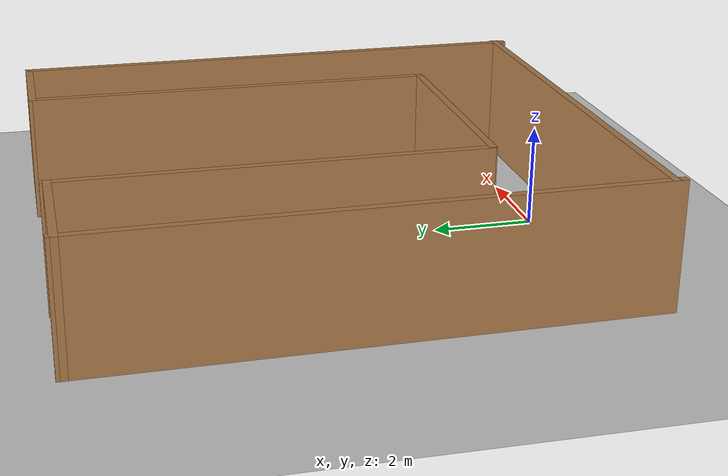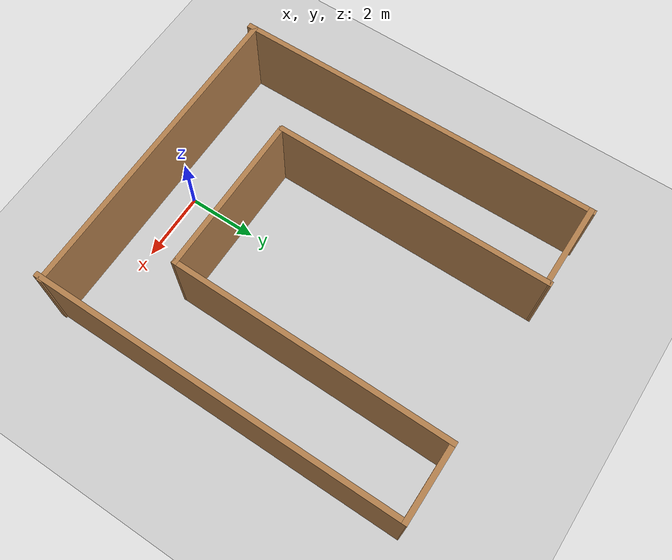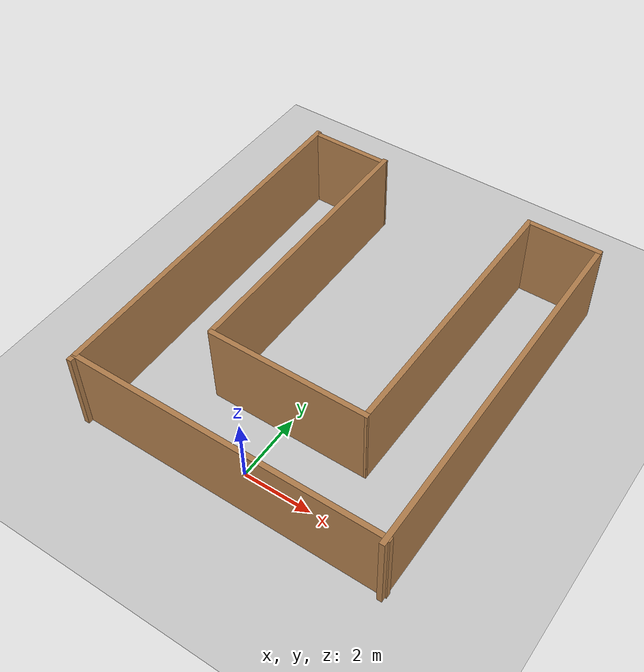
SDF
<sdf version="1.6">
 <world name="default">
  <light name="sun" type="directional">
   <pose>0 0 15 0 -0 0</pose>
   <diffuse>1 1 1 1</diffuse>
   <specular>0.1 0.1 0.1 1</specular>
   <attenuation>
    <range>1000</range>
    <constant>0.9</constant>
    <linear>0.01</linear>
    <quadratic>0.001</quadratic>
   </attenuation>
   <direction>-0.5 0.5 -1</direction>
  </light>
  <model name="ground_plane">
   <static>1</static>
   <link name="link">
    <collision name="collision">
     <geometry><plane><normal>0 0 1</normal><size>100 100</size></plane></geometry>
     <surface><friction><ode><mu>100</mu><mu2>50</mu2></ode></friction></surface>
    </collision>
    <visual name="visual">
     <transparency>1</transparency>
     <cast_shadows>0</cast_shadows>
     <geometry><plane><normal>0 0 1</normal><size>100 100</size></plane></geometry>
     <material>
      <script><uri>file://media/materials/scripts/gazebo.material</uri><name>Gazebo/Grey</name></script>
     </material>
    </visual>
   </link>
  </model>
  <gravity>0 0 -9.8</gravity>
  <magnetic_field>6e-06 2.3e-05 -4.2e-05</magnetic_field>
  <atmosphere type="adiabatic"/>
  <physics name="default_physics" default="0" type="ode">
   <max_step_size>0.001</max_step_size>
   <real_time_factor>1</real_time_factor>
   <real_time_update_rate>1000</real_time_update_rate>
  </physics>
  <scene><ambient>0.4 0.4 0.4 1</ambient><background>0.7 0.7 0.7 1</background><shadows>1</shadows></scene>
  <spherical_coordinates>
   <surface_model>EARTH_WGS84</surface_model>
   <latitude_deg>0</latitude_deg>
   <longitude_deg>0</longitude_deg>
   <elevation>0</elevation>
   <heading_deg>0</heading_deg>
  </spherical_coordinates>
  <model name="Untitled">
   <pose>0.098404 4.36287 0 0 -0 0</pose>
   <link name="Wall_0">
    <collision name="Wall_0_Collision">
     <geometry><box><size>10.7455 0.15 2.5</size></box></geometry>
     <pose>0 0 1.25 0 -0 0</pose>
    </collision>
    <visual name="Wall_0_Visual">
     <pose>0 0 1.25 0 -0 0</pose>
     <geometry><box><size>10.7455 0.15 2.5</size></box></geometry>
     <material>
      <script><uri>file://media/materials/scripts/gazebo.material</uri><name>Gazebo/Wood</name></script>
      <ambient>0 0.333333 1 1</ambient>
     </material>
    </visual>
    <pose>-4.54969 -0.017648 0 0 -0 1.5792</pose>
   </link>
   <link name="Wall_1">
    <collision name="Wall_1_Collision">
     <geometry><box><size>2.5 0.15 2.5</size></box></geometry>
     <pose>0 0 1.25 0 -0 0</pose>
    </collision>
    <visual name="Wall_1_Visual">
     <pose>0 0 1.25 0 -0 0</pose>
     <geometry><box><size>2.5 0.15 2.5</size></box></geometry>
     <material>
      <script><uri>file://media/materials/scripts/gazebo.material</uri><name>Gazebo/Wood</name></script>
      <ambient>0 0.333333 1 1</ambient>
     </material>
    </visual>
    <pose>-3.41923 5.22642 0 0 -0 0</pose>
   </link>
   <link name="Wall_2">
    <collision name="Wall_2_Collision">
     <geometry><box><size>8.10366 0.15 2.5</size></box></geometry>
     <pose>0 0 1.25 0 -0 0</pose>
    </collision>
    <visual name="Wall_2_Visual">
     <pose>0 0 1.25 0 -0 0</pose>
     <geometry><box><size>8.10366 0.15 2.5</size></box></geometry>
     <material>
      <script><uri>file://media/materials/scripts/gazebo.material</uri><name>Gazebo/Wood</name></script>
      <ambient>0 0.333333 1 1</ambient>
     </material>
    </visual>
    <pose>-2.24274 1.30309 0 0 0 -1.57042</pose>
   </link>
   <link name="Wall_3">
    <collision name="Wall_3_Collision">
     <geometry><box><size>4.75 0.15 2.5</size></box></geometry>
     <pose>0 0 1.25 0 -0 0</pose>
    </collision>
    <visual name="Wall_3_Visual">
     <pose>0 0 1.25 0 -0 0</pose>
     <geometry><box><size>4.75 0.15 2.5</size></box></geometry>
     <material>
      <script><uri>file://media/materials/scripts/gazebo.material</uri><name>Gazebo/Wood</name></script>
      <ambient>0 0.333333 1 1</ambient>
     </material>
    </visual>
    <pose>0.093926 -2.70891 0 0 -0 0</pose>
   </link>
   <link name="Wall_4">
    <collision name="Wall_4_Collision">
     <geometry><box><size>8.17443 0.15 2.5</size></box></geometry>
     <pose>0 0 1.25 0 -0 0</pose>
    </collision>
    <visual name="Wall_4_Visual">
     <pose>0 0 1.25 0 -0 0</pose>
     <geometry><box><size>8.17443 0.15 2.5</size></box></geometry>
     <material>
      <script><uri>file://media/materials/scripts/gazebo.material</uri><name>Gazebo/Wood</name></script>
      <ambient>0 0.333333 1 1</ambient>
     </material>
    </visual>
    <pose>2.42425 1.30319 0 0 -0 1.56324</pose>
   </link>
   <link name="Wall_6">
    <collision name="Wall_6_Collision">
     <geometry><box><size>2.25 0.15 2.5</size></box></geometry>
     <pose>0 0 1.25 0 -0 0</pose>
    </collision>
    <visual name="Wall_6_Visual">
     <pose>0 0 1.25 0 -0 0</pose>
     <geometry><box><size>2.25 0.15 2.5</size></box></geometry>
     <material>
      <script><uri>file://media/materials/scripts/gazebo.material</uri><name>Gazebo/Wood</name></script>
      <ambient>0 0.333333 1 1</ambient>
     </material>
    </visual>
    <pose>3.50457 5.31528 0 0 -0 0</pose>
   </link>
   <link name="Wall_7">
    <collision name="Wall_7_Collision">
     <geometry><box><size>10.75 0.15 2.5</size></box></geometry>
     <pose>0 0 1.25 0 -0 0</pose>
    </collision>
    <visual name="Wall_7_Visual">
     <pose>0 0 1.25 0 -0 0</pose>
     <geometry><box><size>10.75 0.15 2.5</size></box></geometry>
     <material>
      <script><uri>file://media/materials/scripts/gazebo.material</uri><name>Gazebo/Wood</name></script>
      <ambient>0 0.333333 1 1</ambient>
     </material>
    </visual>
    <pose>4.55457 -0.011316 0 0 0 -1.5708</pose>
   </link>
   <link name="Wall_9">
    <collision name="Wall_9_Collision">
     <geometry><box><size>9.25 0.15 2.5</size></box></geometry>
     <pose>0 0 1.25 0 -0 0</pose>
    </collision>
    <visual name="Wall_9_Visual">
     <pose>0 0 1.25 0 -0 0</pose>
     <geometry><box><size>9.25 0.15 2.5</size></box></geometry>
     <material>
      <script><uri>file://media/materials/scripts/gazebo.material</uri><name>Gazebo/Wood</name></script>
      <ambient>0 0.333333 1 1</ambient>
     </material>
    </visual>
    <pose>0.044855 -5.17371 0 0 -0 0</pose>
   </link>
   <static>1</static>
  </model>
 </world>
</sdf>
